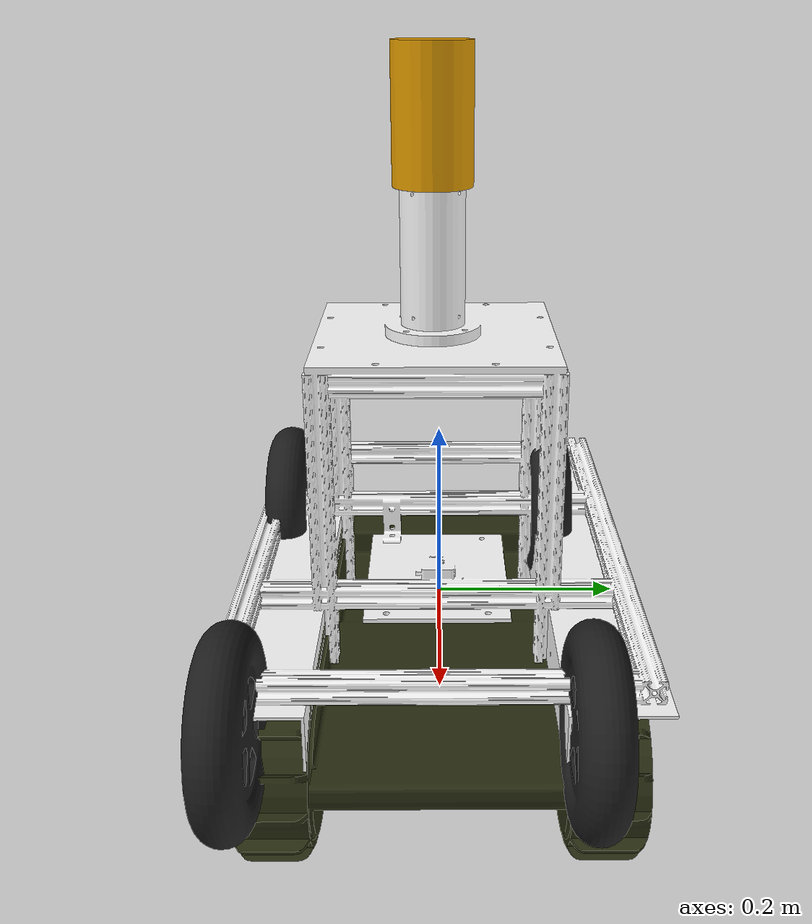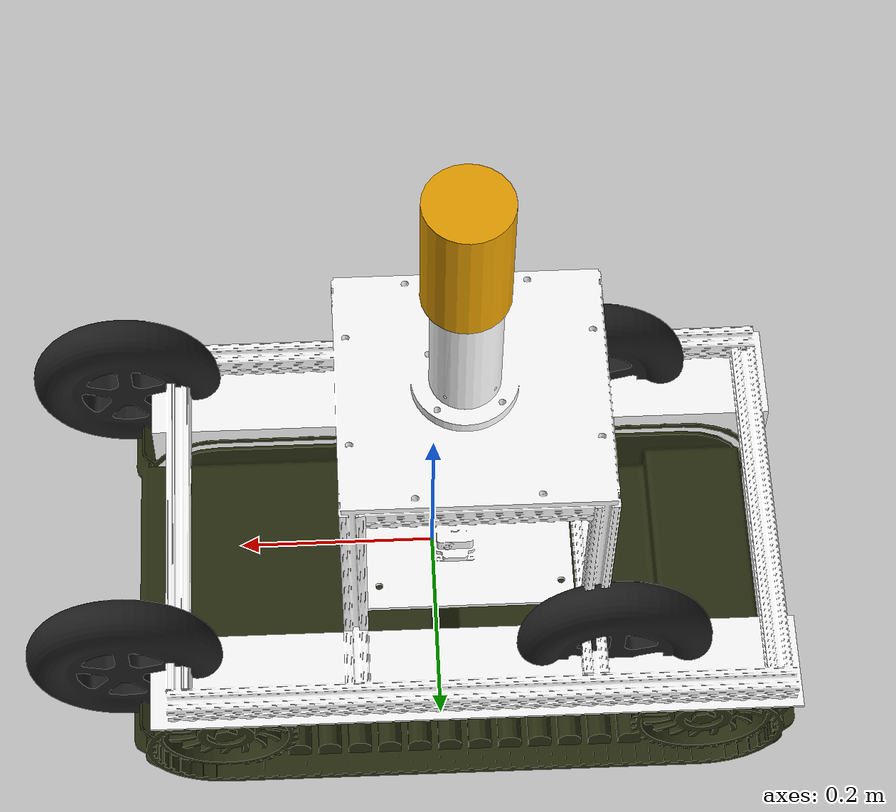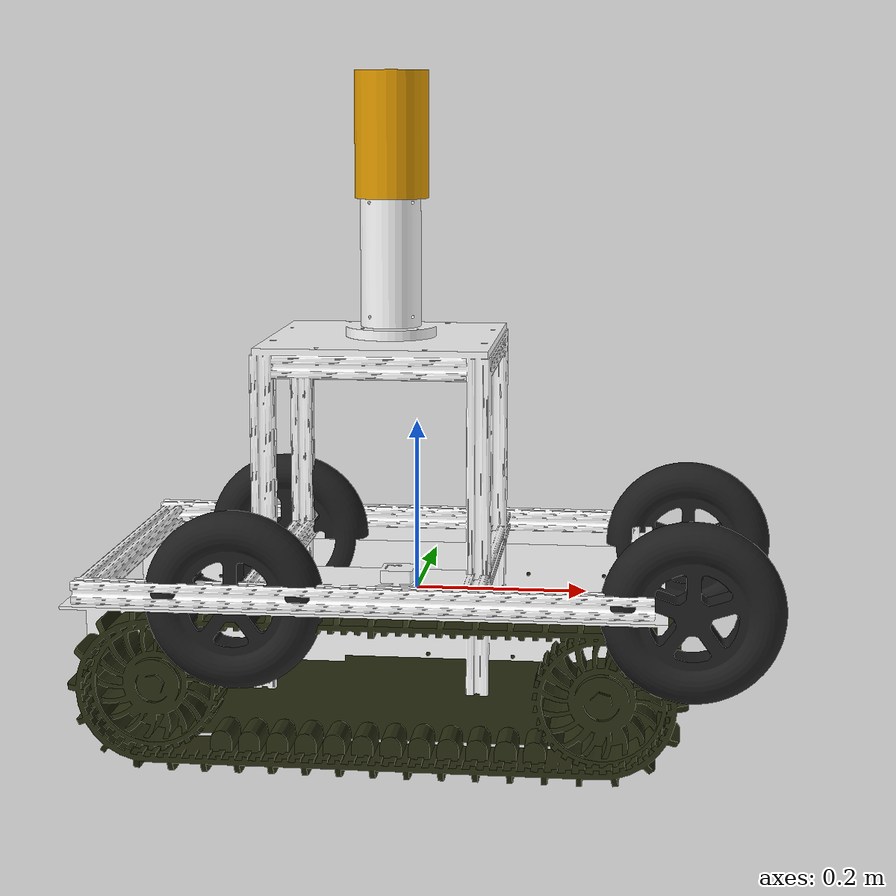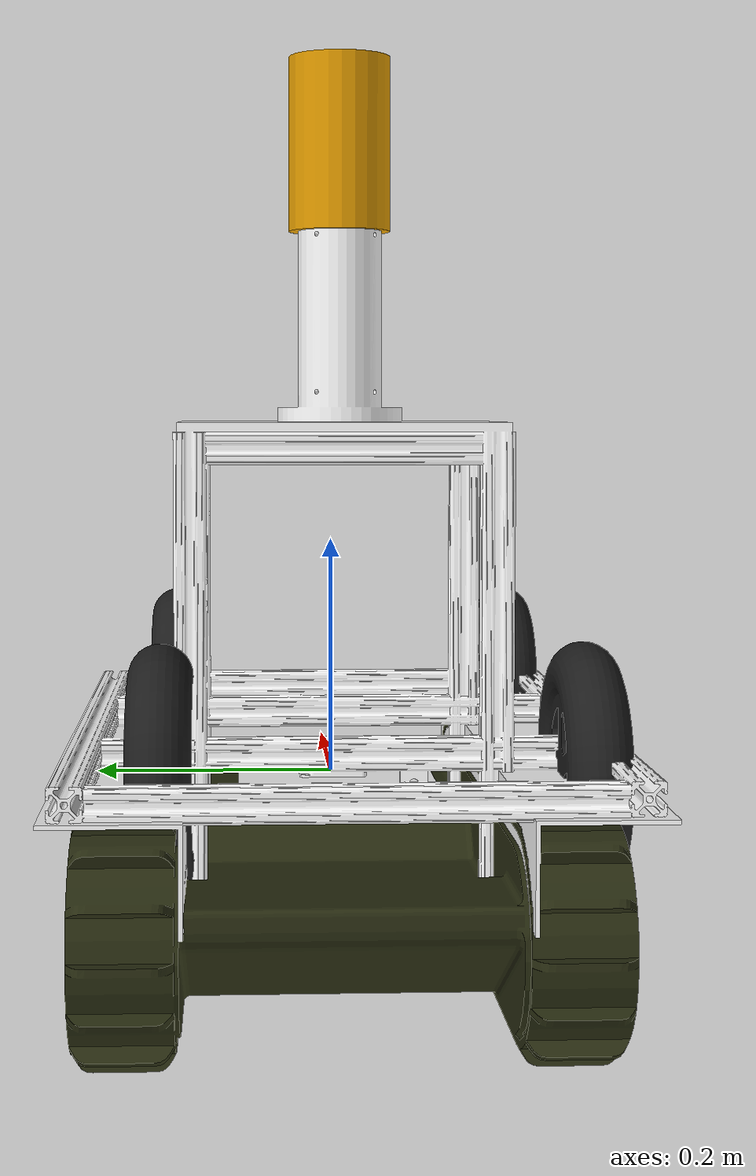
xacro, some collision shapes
<?xml version="1.0"?>

<robot name="gvrbot" xmlns:xacro="http://www.ros.org/wiki/xacro">

    <!-- Included URDF Files    -->
    <xacro:include filename="$(find gvrbot)/models/robots/gvrbot_base3.urdf.xacro" />
    <gvr_base_macro />

    <xacro:include filename="$(find gvrbot)/models/robots/frame_8020.urdf.xacro" />
    <frame_8020 parent="base_link" offset_x="0.28" offset_y="0.135" offset_z="-0.115"/>

   <xacro:arg name="gpu" default="false"/>
  <xacro:property name="gpu" value="$(arg gpu)" />
  <xacro:include filename="$(find velodyne_description)/urdf/HDL-32E.urdf.xacro"/>
  <HDL-32E parent="base_link" name="velodyne2" topic="/velodyne_points2" hz="10" samples="220" gpu="${gpu}">
    <origin xyz="-0.028 -0.006 0.46" rpy="0 0 0" />

  </HDL-32E>

</robot>

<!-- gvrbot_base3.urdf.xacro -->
<robot
    xmlns:xacro="http://www.ros.org/wiki/xacro"
    xmlns:interface="http://www.ros.org/wiki/xacro/#interface">

    <xacro:include filename="$(find gvrbot)/models/robots/inertial_tensors.urdf.xacro" />
    <xacro:include filename="$(find gvrbot)/models/robots/single_wheel.urdf.xacro" />
    <xacro:include filename="$(find gvrbot)/models/robots/track_wheel.urdf.xacro" />
    <xacro:include filename="$(find gvrbot)/models/robots/track_wheel3.urdf.xacro" />
    <xacro:include filename="$(find gvrbot)/models/robots/basic_colors.urdf.xacro" />

    <!-- Properties (Constants) -->
  <xacro:property name="PI" value="3.1415926535897931" />

    <xacro:property name="base_size_x" value="0.380" />
    <xacro:property name="base_size_y" value="0.3" />
    <xacro:property name="base_size_z" value="0.085" />
    <xacro:property name="base_mass" value="25.0" />

    <xacro:property name="wheel_radius_big" value="0.085" />
    <xacro:property name="wheel_size_y" value="0.0825" />
    <xacro:property name="wheel_mass" value="0.1" />

    <xacro:property name="wheel_offset_z_from_base_link" value="-${wheel_radius_big}" />

    <material name="army_green"><color rgba="${42/255} ${46/255} ${18/255} 1.0"/></material>

  <xacro:macro name="wheel" params="prefix *joint_pose">

    <link name="${prefix}_wheel_link">
      <visual>
        <origin xyz="0 0 0" rpy="${PI/2} 0 0"/>
        <geometry>
          <mesh filename="package://jackal_description/meshes/jackal-wheel.stl"/>
        </geometry>
        <material name="black" />
      </visual>
      <collision>
        <origin xyz="0 0 0" rpy="${PI/2} 0 0"/>
        <geometry>
          <cylinder radius="${wheel_radius}" length="${wheel_width}"/>
        </geometry>
      </collision>
      <inertial>
        <origin xyz="0 0 0" rpy="0 0 0"/>
        <mass value="0.477"/>
        <inertia
          ixx="0.0013" ixy="0" ixz="0"
          iyy="0.0024" iyz="0"
          izz="0.0013"/>
      </inertial>
    </link>

    <gazebo reference="${prefix}_wheel_link">
      <material>Gazebo/DarkGrey</material>
    </gazebo>

    <joint name="${prefix}_wheel" type="continuous">
      <parent link="chassis_link"/>
      <child link="${prefix}_wheel_link" />
      <xacro:insert_block name="joint_pose" />
      <axis xyz="0 1 0" />
    </joint>

    <!-- In reality, Jackal has only two motors, one per side. However, it's more
         straightforward for Gazebo to simulate as if there's an actuator per wheel. -->
    <transmission name="${prefix}_wheel_trans">
      <type>transmission_interface/SimpleTransmission</type>
      <joint name="${prefix}_wheel">
        <hardwareInterface>hardware_interface/VelocityJointInterface</hardwareInterface>
      </joint>
      <actuator name="${prefix}_actuator">
        <mechanicalReduction>1</mechanicalReduction>
      </actuator>
    </transmission>
  </xacro:macro>

    <xacro:macro name="gvr_base_macro">

        <!-- Links and Joints (i.e., the robot) -->
        <link name="base_footprint"/>
        <joint name="bf_to_bl" type="fixed">
          <origin xyz="0.0 0.0 -${base_size_z * 2}" rpy="0.0 0.0 0.0" />
          <parent link="base_link"/>
          <child link="base_footprint"/>
        </joint>

        <link name="base_link"></link>
        <joint name="base_link_joint" type="fixed">
            <origin xyz="0 0 0" rpy="0 0 0" />
            <parent link="base_link"/>
            <child link="chassis_link" />
        </joint>

        <link name="chassis_link">
            <inertial>
                <mass value="${base_mass}" />
                <origin xyz="0.0 0.0 0.0" rpy="0 0 0" />
                <rectangular_prism_tensor mass="${base_mass}" len_x="${base_size_x}" len_y="${base_size_y}" len_z="${base_size_z}" />
            </inertial>

            <!-- compare the two visual pieces until they match up in size then delete the mesh -->
            <visual>
                <origin xyz="${base_size_x - 0.05} 0.0 -${base_size_z * 2}" rpy="0 0 1.57" />
                <geometry>
                    <mesh filename="package://gvrbot/models/meshes/gvrbot_base.STL"/>
                </geometry>
                <material name="army_green"/>
            </visual>

            <collision>
                <origin xyz="0.0 0.0 -0.085" rpy="0 0 0" />
                <geometry>
                    <box size="${base_size_x} ${base_size_y} ${base_size_z}" />
                </geometry>
            </collision>
        </link>

    <xacro:property name="wheelbase" value="0.50" />
    <xacro:property name="track" value="0.33" />
    <xacro:property name="wheel_vertical_offset" value="-0.07" />
  <xacro:property name="wheel_radius" value="0.098" />
  <xacro:property name="wheel_width" value="0.040" />

  <xacro:wheel prefix="front_left">
    <origin xyz="${wheelbase/2-0.03} ${track/2} ${wheel_vertical_offset}" rpy="0 0 0" />
  </xacro:wheel>
  <xacro:wheel prefix="front_right">
    <origin xyz="${wheelbase/2-0.03} ${-track/2} ${wheel_vertical_offset}" rpy="0 0 0" />
  </xacro:wheel>
  <xacro:wheel prefix="rear_left">
    <origin xyz="${-wheelbase/2-0.03} ${track/2} ${wheel_vertical_offset}" rpy="0 0 0" />
  </xacro:wheel>
  <xacro:wheel prefix="rear_right">
    <origin xyz="${-wheelbase/2-0.03} ${-track/2} ${wheel_vertical_offset}" rpy="0 0 0" />
  </xacro:wheel>

  <gazebo>
    <plugin name="gazebo_ros_control" filename="libgazebo_ros_control.so">
      <robotNamespace>/</robotNamespace>
            <legacyModeNS>true</legacyModeNS>
    </plugin>

        <plugin name="p3d_base_controller" filename="libgazebo_ros_p3d.so">
          <alwaysOn>true</alwaysOn>
          <updateRate>50.0</updateRate>
          <bodyName>base_link</bodyName>
          <topicName>/gvrbot/ground_truth/state</topicName>
          <gaussianNoise>0.01</gaussianNoise>
          <frameName>world</frameName>
          <xyzOffsets>0 0 0</xyzOffsets>
          <rpyOffsets>0 0 0</rpyOffsets>
        </plugin>

        <plugin name="imu_controller" filename="libhector_gazebo_ros_imu.so">
          <robotNamespace>/</robotNamespace>
          <alwaysOn>true</alwaysOn>
          <updateRate>50.0</updateRate>
          <bodyName>base_link</bodyName>
          <topicName>imu/data</topicName>
          <accelDrift>0.005 0.005 0.005</accelDrift>
          <accelGaussianNoise>0.005 0.005 0.005</accelGaussianNoise>
          <rateDrift>0.005 0.005 0.005 </rateDrift>
          <rateGaussianNoise>0.005 0.005 0.005 </rateGaussianNoise>
          <headingDrift>0.005</headingDrift>
          <headingGaussianNoise>0.005</headingGaussianNoise>
          <xyzOffset>0 0 0</xyzOffset>
          <rpyOffset>0 0 0</rpyOffset>
        </plugin>

        </gazebo>

    </xacro:macro>
</robot>

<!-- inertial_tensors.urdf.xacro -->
<robot xmlns:xacro="http://www.ros.org/wiki/xacro">

  <xacro:macro name="rectangular_prism_tensor" params="mass len_x len_y len_z">
    <inertia   ixx="${ mass / 3 * ( len_y * len_y + len_z * len_z ) }" ixy="${ mass / 4 * len_x * len_y }" ixz="${ mass / 4 * len_x * len_z }"
               iyy="${ mass / 3 * ( len_y * len_y + len_z * len_z ) }" iyz="${ mass / 4 * len_y * len_z }"
               izz="${ mass / 3 * ( len_y * len_y + len_z * len_z ) }" />
  </xacro:macro>

  <!-- Z axis through the center of top and bottom  -->
  <xacro:macro name="cylinder_tensor" params="mass radius height">
    <inertia   ixx="${ mass / 12 * height * height + mass / 4 * radius * radius }" ixy="0.0" ixz="0.0"
               iyy="${ mass / 12 * height * height + mass / 4 * radius * radius }" iyz="0.0"
               izz="${ mass / 2 * radius * radius }" />
  </xacro:macro>

</robot>

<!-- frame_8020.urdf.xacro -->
<robot xmlns:xacro="http://www.ros.org/wiki/xacro">

    <xacro:include filename="$(find gvrbot)/models/robots/inertial_tensors.urdf.xacro" />

    <xacro:property name="frame_size_x" value="0.680" />
    <xacro:property name="frame_size_y" value="0.20" />
    <xacro:property name="frame_size_z" value="0.30" />
    <xacro:property name="frame_mass" value="2.89" />
    <xacro:property name="M_PI" value="3.14159"/>

    <xacro:macro name="frame_8020" params="parent offset_x offset_y offset_z">
        <joint name="frame_8020_joint" type="fixed">
            <origin xyz="${offset_x} ${offset_y} ${offset_z}" rpy="0 0 ${-M_PI/2}" />
            <parent link="${parent}" />
            <child link="frame8020_link" />
        </joint>

        <link name="frame8020_link">
            <inertial>
              <origin xyz="0.0 -0.0 0.0" rpy="0 0 0" />
              <mass value="${frame_mass}" />
              <rectangular_prism_tensor mass="${frame_mass}" len_x="${frame_size_x}" len_y="${frame_size_y}" len_z="${frame_size_z}" />
            </inertial>
            <visual>
              <origin xyz="0 0 0" rpy="0 0 0" />
              <geometry>
                <mesh filename="package://gvrbot/models/meshes/frame_8020.STL" />
              </geometry>
              <material name="">
                <color rgba="1 1 1 1" />
              </material>
            </visual>
            <collision>
              <origin xyz="0 0 0" rpy="0 0 0" />
              <geometry>
                <mesh filename="package://gvrbot/models/meshes/frame_8020.STL" />
              </geometry>
            </collision>
        </link>
   </xacro:macro>

</robot>

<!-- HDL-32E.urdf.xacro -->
<robot xmlns:xacro="http://www.ros.org/wiki/xacro" name="HDL-32E">
  <xacro:property name="M_PI" value="3.1415926535897931" />
  <xacro:macro name="HDL-32E" params="*origin parent:=base_link name:=velodyne tf_prefix:='' topic:=/velodyne_points organize_cloud:=false hz:=10 lasers:=32 samples:=2187 collision_range:=0.3 min_range:=0.9 max_range:=130.0 noise:=0.008 min_angle:=-${M_PI} max_angle:=${M_PI} gpu:=false">

    <joint name="${name}_base_mount_joint" type="fixed">
      <xacro:insert_block name="origin" />
      <parent link="${parent}"/>
      <child link="${name}_base_link"/>
    </joint>

    <link name="${name}_base_link">
      <inertial>
        <mass value="1.0"/>
        <origin xyz="0 0 0.07212"/>
        <inertia ixx="${(1.0 * (3.0*0.04267*0.04267 + 0.14424*0.14424)) / 12.0}" ixy="0" ixz="0"
          iyy="${(1.0 * (3.0*0.04267*0.04267 + 0.14424*0.14424)) / 12.0}" iyz="0"
          izz="${0.5 * 1.0 * (0.04267*0.04267)}"/>
      </inertial>
      <visual>
        <geometry>
          <mesh filename="package://velodyne_description/meshes/HDL32E_base.dae" />
        </geometry>
      </visual>
      <collision>
        <origin rpy="0 0 0" xyz="0 0 0.07212"/>
        <geometry>
          <cylinder radius="0.04267" length="0.14424"/>
        </geometry>
      </collision>
    </link>

    <joint name="${name}_base_scan_joint" type="fixed" >
      <origin xyz="0 0 0.09081" rpy="0 0 0" />
      <parent link="${name}_base_link" />
      <child link="${name}"/>
    </joint>

    <link name="${name}">
      <inertial>
        <mass value="0.01"/>
        <origin xyz="0 0 0"/>
        <inertia ixx="1e-7" ixy="0" ixz="0" iyy="1e-7" iyz="0" izz="1e-7"/>
      </inertial>
      <visual>
        <origin xyz="0 0 -0.09081" rpy="0 0 0" />
        <geometry>
          <mesh filename="package://velodyne_description/meshes/HDL32E_scan.dae" />
        </geometry>
      </visual>
      <collision>
        <geometry>
          <sphere radius="0"/>
        </geometry>
      </collision>
    </link>

    <!-- Gazebo requires the velodyne_gazebo_plugins package -->
    <gazebo reference="${name}">
      <xacro:if value="${gpu}">
        <sensor type="gpu_ray" name="${name}-HDL32E">
          <pose>0 0 0 0 0 0</pose>
          <visualize>false</visualize>
          <update_rate>${hz}</update_rate>
          <ray>
            <scan>
              <horizontal>
                <samples>${samples}</samples>
                <resolution>1</resolution>
                <min_angle>${min_angle}</min_angle>
                <max_angle>${max_angle}</max_angle>
              </horizontal>
              <vertical>
                <samples>${lasers}</samples>
                <resolution>1</resolution>
                <min_angle>-${5.0*M_PI/180.0}</min_angle>
                <max_angle> ${85.0*M_PI/180.0}</max_angle>
              </vertical>
            </scan>
            <range>
              <min>${collision_range}</min>
              <max>${max_range+1}</max>
              <resolution>0.001</resolution>
            </range>
            <noise>
              <type>gaussian</type>
              <mean>0.0</mean>
              <stddev>0.0</stddev>
            </noise>
          </ray>
          <plugin name="gazebo_ros_laser_controller" filename="libgazebo_ros_velodyne_laser.so">
            <ros>
              <namespace>/${name}</namespace>
              <remapping>~/out:=${topic}</remapping>
            </ros>
            <tf_prefix>${tf_prefix}</tf_prefix>
            <frame_name>${name}</frame_name>
            <organize_cloud>${organize_cloud}</organize_cloud>
            <min_range>${min_range}</min_range>
            <max_range>${max_range}</max_range>
            <gaussian_noise>${noise}</gaussian_noise>
          </plugin>
        </sensor>
      </xacro:if>
      <xacro:unless value="${gpu}">
        <sensor type="ray" name="${name}-HDL32E">
          <pose>0 0 0 0 0 0</pose>
          <visualize>false</visualize>
          <update_rate>${hz}</update_rate>
          <ray>
            <scan>
              <horizontal>
                <samples>${samples}</samples>
                <resolution>1</resolution>
                <min_angle>${min_angle}</min_angle>
                <max_angle>${max_angle}</max_angle>
              </horizontal>
              <vertical>
                <samples>${lasers}</samples>
                <resolution>1</resolution>
                <min_angle>-${5.0*M_PI/180.0}</min_angle>
                <max_angle> ${85.0*M_PI/180.0}</max_angle>
              </vertical>
            </scan>
            <range>
              <min>${collision_range}</min>
              <max>${max_range+1}</max>
              <resolution>0.001</resolution>
            </range>
            <noise>
              <type>gaussian</type>
              <mean>0.0</mean>
              <stddev>0.0</stddev>
            </noise>
          </ray>
          <plugin name="gazebo_ros_laser_controller" filename="libgazebo_ros_velodyne_laser.so">
            <ros>
              <namespace>/${name}</namespace>
              <remapping>~/out:=${topic}</remapping>
            </ros>
            <tf_prefix>${tf_prefix}</tf_prefix>
            <frame_name>${name}</frame_name>
            <organize_cloud>${organize_cloud}</organize_cloud>
            <min_range>${min_range}</min_range>
            <max_range>${max_range}</max_range>
            <gaussian_noise>${noise}</gaussian_noise>
          </plugin>
        </sensor>
      </xacro:unless>
    </gazebo>

  </xacro:macro>
</robot>
